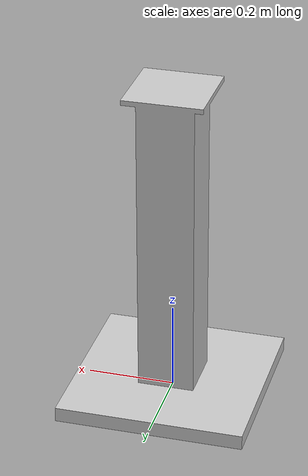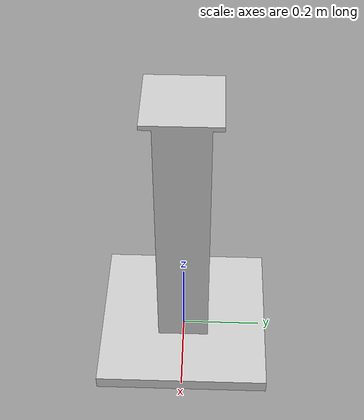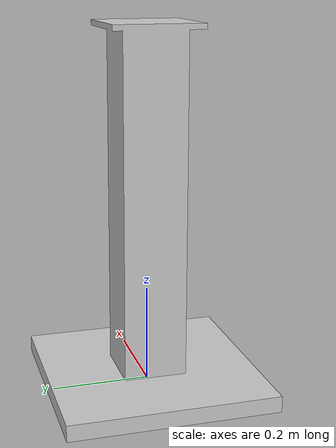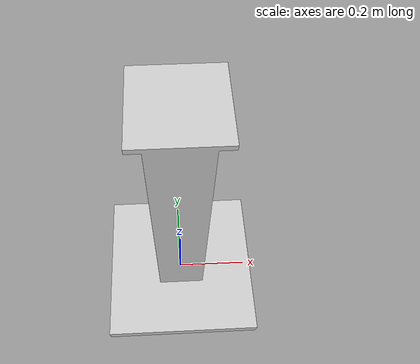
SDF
<?xml version="1.0"?>
<sdf version="1.7">
  <model name="robot_base">
    <static>true</static>
    <link name="link">
      <pose>0 0 0.73 0 0 0</pose>

      <collision name="surface">
        <pose>0 0 -0.015 0 0 0</pose>
        <geometry>
          <box>
            <size>2.35 1 0.03</size>
          </box>
        </geometry>
      </collision>

      <visual name="visual">
        <geometry>
          <mesh>
            <uri>model://robot_base/meshes/base2.dae</uri>
            <scale>1.5 1.5 1</scale>
          </mesh>
        </geometry>
      </visual>
    </link>
  </model>
</sdf>
